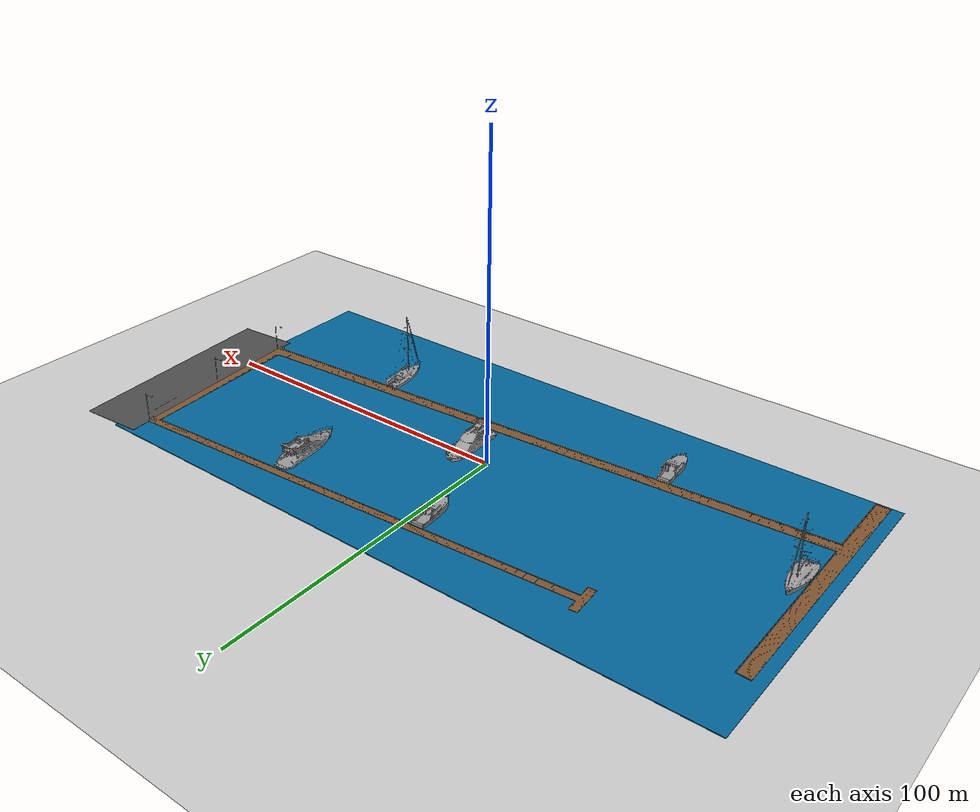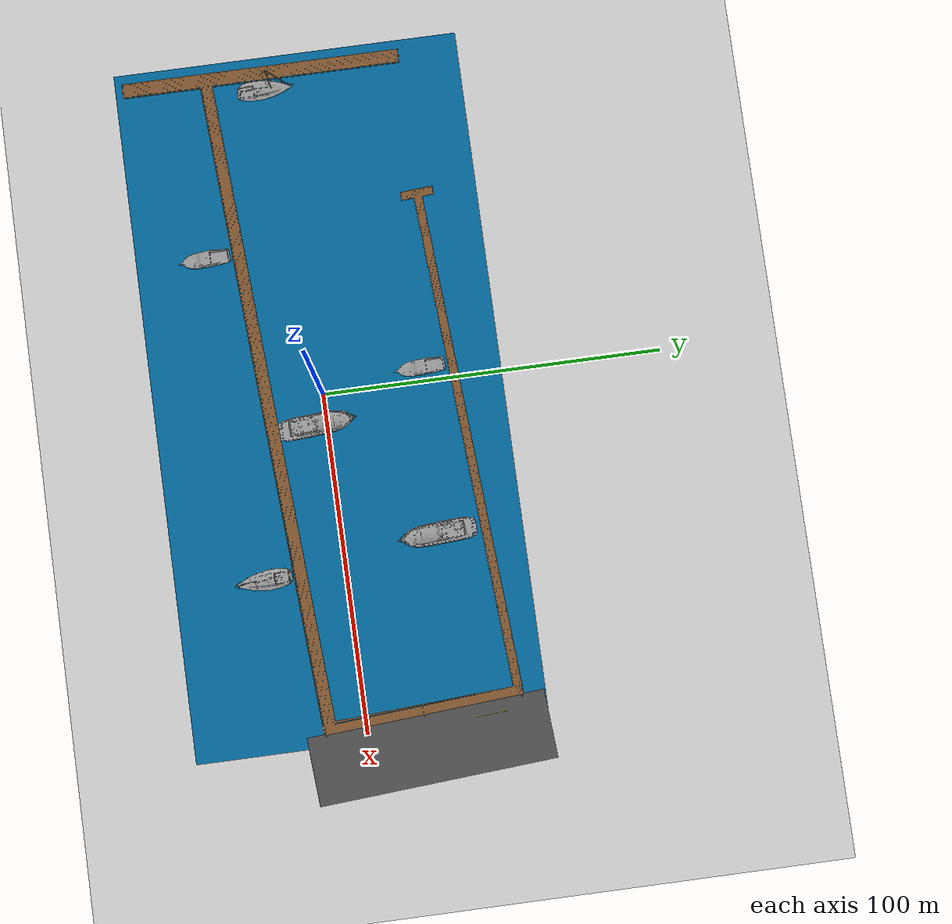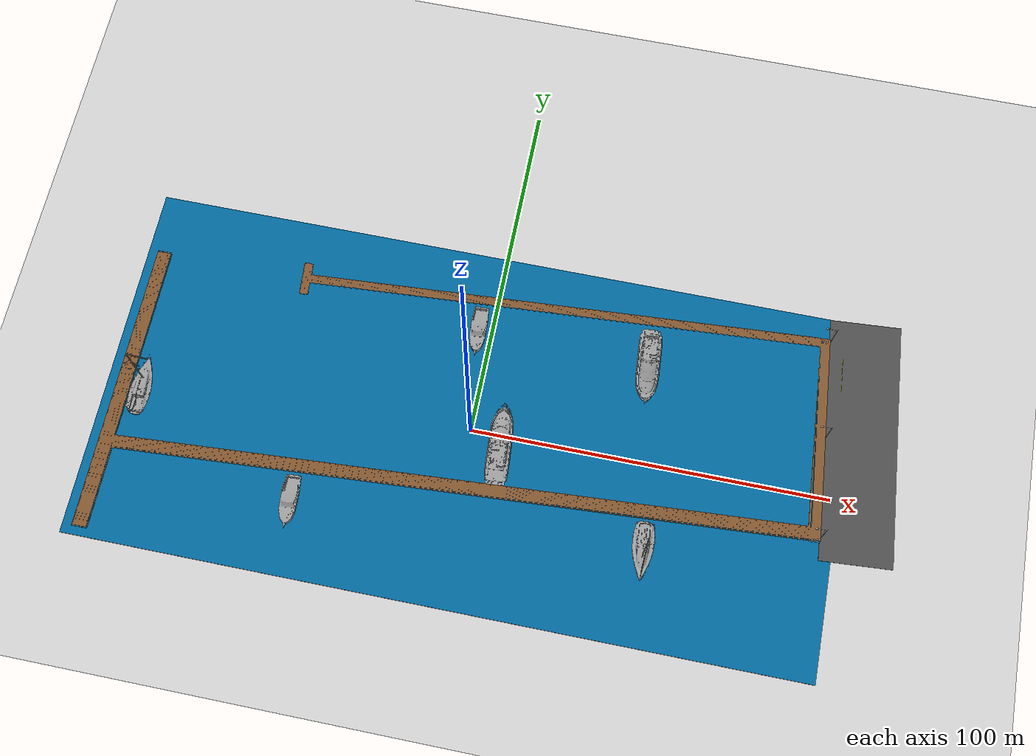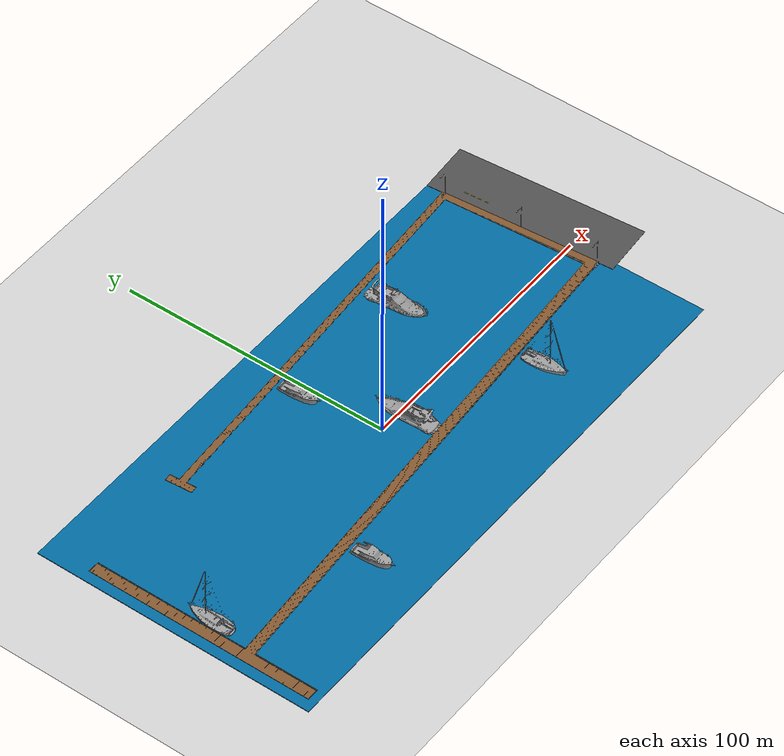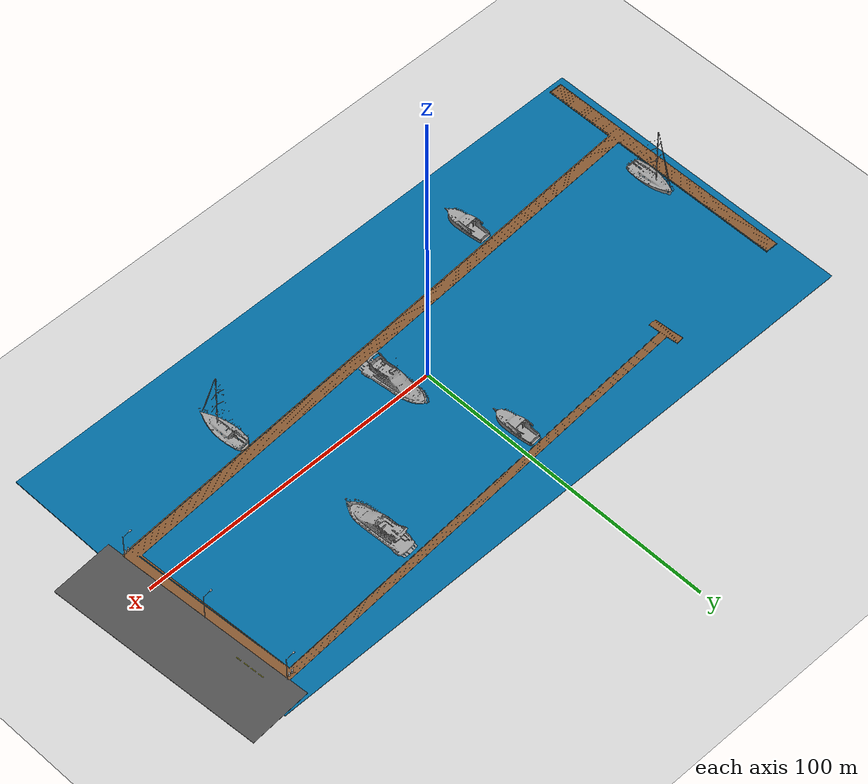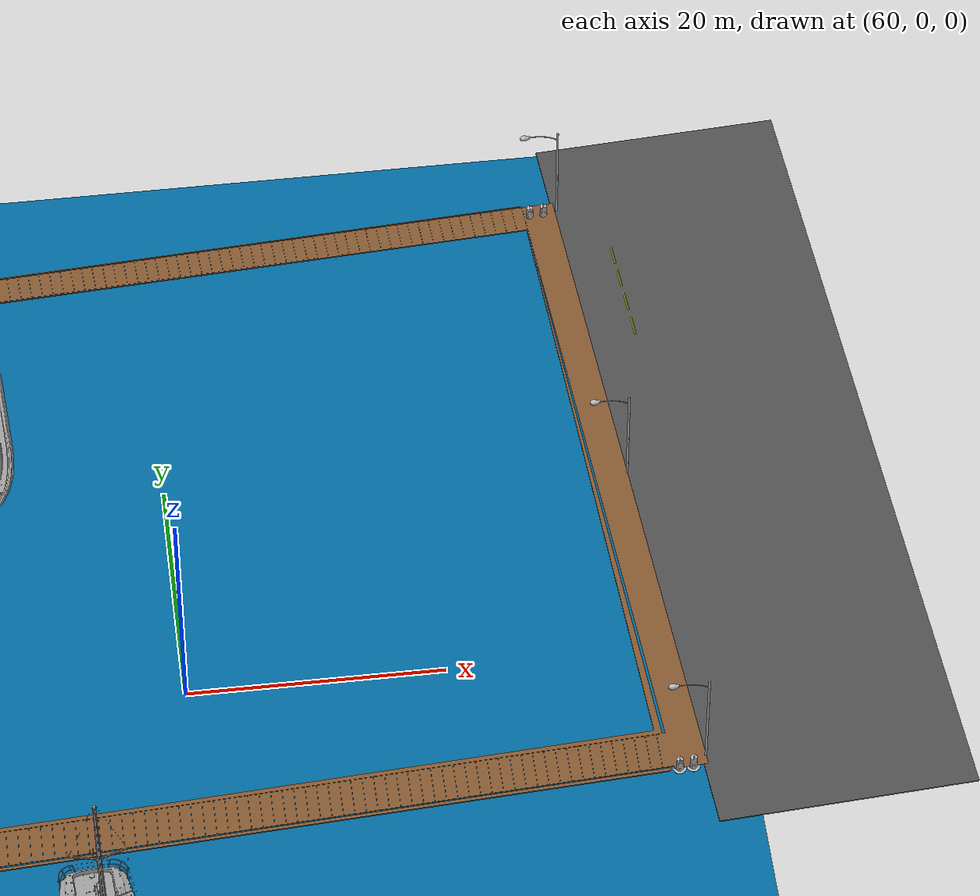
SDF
<sdf version="1.7">
 <world name="default">
  <model name="ground_plane">
   <static>1</static>
   <link name="link">
    <collision name="collision">
     <geometry><plane><normal>0 0 1</normal><size>100 100</size></plane></geometry>
     <surface><friction><ode><mu>100</mu><mu2>50</mu2></ode></friction></surface>
    </collision>
    <visual name="visual">
     <cast_shadows>0</cast_shadows>
     <geometry><plane><normal>0 0 1</normal><size>100 100</size></plane></geometry>
     <material>
      <script><uri>file://media/materials/scripts/gazebo.material</uri><name>Gazebo/Grey</name></script>
     </material>
    </visual>
   </link>
  </model>
  <gravity>0 0 -9.8</gravity>
  <magnetic_field>6e-06 2.3e-05 -4.2e-05</magnetic_field>
  <atmosphere type="adiabatic"/>
  <physics type="ode">
   <max_step_size>0.001</max_step_size>
   <real_time_factor>1</real_time_factor>
   <real_time_update_rate>1000</real_time_update_rate>
  </physics>
  <scene><ambient>0.4 0.4 0.4 1</ambient><background>0.7 0.7 0.7 1</background><shadows>0</shadows></scene>
  <audio><device>default</device></audio>
  <spherical_coordinates>
   <surface_model>EARTH_WGS84</surface_model>
   <latitude_deg>0</latitude_deg>
   <longitude_deg>0</longitude_deg>
   <elevation>0</elevation>
   <heading_deg>0</heading_deg>
  </spherical_coordinates>
  <light name="sun" type="directional">
   <pose>-37.2448 -35.311 10 0 -0 0</pose>
   <diffuse>0.8 0.8 0.8 1</diffuse>
   <specular>0.2 0.2 0.2 1</specular>
   <attenuation>
    <range>1000</range>
    <constant>0.9</constant>
    <linear>0.01</linear>
    <quadratic>0.001</quadratic>
   </attenuation>
   <direction>-0.5 0.1 -0.9</direction>
   <spot><inner_angle>0</inner_angle><outer_angle>0</outer_angle><falloff>0</falloff></spot>
  </light>
  <light name="sun_clone" type="directional">
   <pose>31.987 4.34201 10 0 -0 0</pose>
   <diffuse>0.8 0.8 0.8 1</diffuse>
   <specular>0.2 0.2 0.2 1</specular>
   <direction>-0.483368 0.096674 -0.870063</direction>
   <attenuation>
    <range>1000</range>
    <constant>0.9</constant>
    <linear>0.01</linear>
    <quadratic>0.001</quadratic>
   </attenuation>
   <spot><inner_angle>0</inner_angle><outer_angle>0</outer_angle><falloff>0</falloff></spot>
  </light>
  <model name="drc_practice_yellow_parking_block">
   <static>1</static>
   <link name="link">
    <visual name="visual">
     <geometry><mesh><uri>model://drc_practice_yellow_parking_block/meshes/block.dae</uri></mesh></geometry>
    </visual>
    <collision name="collision">
     <geometry><mesh><uri>model://drc_practice_yellow_parking_block/meshes/block.dae</uri></mesh></geometry>
    </collision>
   </link>
   <pose>98.5986 37.6254 1.1 0 -0 0.075</pose>
  </model>
  <model name="drc_practice_yellow_parking_block_clone">
   <static>1</static>
   <link name="link">
    <visual name="visual">
     <geometry><mesh><uri>model://drc_practice_yellow_parking_block/meshes/block.dae</uri></mesh></geometry>
    </visual>
    <collision name="collision">
     <geometry><mesh><uri>model://drc_practice_yellow_parking_block/meshes/block.dae</uri></mesh></geometry>
    </collision>
   </link>
   <pose>98.9902 32.3619 1.1 0 -0 0.075</pose>
  </model>
  <model name="drc_practice_yellow_parking_block_clone_0">
   <static>1</static>
   <link name="link">
    <visual name="visual">
     <geometry><mesh><uri>model://drc_practice_yellow_parking_block/meshes/block.dae</uri></mesh></geometry>
    </visual>
    <collision name="collision">
     <geometry><mesh><uri>model://drc_practice_yellow_parking_block/meshes/block.dae</uri></mesh></geometry>
    </collision>
   </link>
   <pose>98.7927 35.0179 1.1 0 -0 0.075</pose>
  </model>
  <model name="drc_practice_yellow_parking_block_clone_1">
   <static>1</static>
   <link name="link">
    <visual name="visual">
     <geometry><mesh><uri>model://drc_practice_yellow_parking_block/meshes/block.dae</uri></mesh></geometry>
    </visual>
    <collision name="collision">
     <geometry><mesh><uri>model://drc_practice_yellow_parking_block/meshes/block.dae</uri></mesh></geometry>
    </collision>
   </link>
   <pose>98.4313 40.105 1.1 0 -0 0.075</pose>
  </model>
  <model name="Lamp Post_clone_2">
   <static>1</static>
   <link name="link">
    <collision name="collision">
     <geometry><mesh><uri>model://lamp_post/meshes/lamp_post.dae</uri><scale>3 3 3</scale></mesh></geometry>
    </collision>
    <visual name="visual">
     <geometry><mesh><uri>model://lamp_post/meshes/lamp_post.dae</uri><scale>3 3 3</scale></mesh></geometry>
    </visual>
   </link>
   <pose>98.4245 -11.3766 1.1 0 0 -1.52725</pose>
  </model>
  <model name="yacht_1_0_clone">
   <static>1</static>
   <link name="link">
    <visual name="visual">
     <geometry>
      <mesh>
       <uri>/home/albert/marinero_ws/src/marinero_simulations/models/yacht_2/meshes/Yatch.stl</uri>
       <scale>5 5 5</scale>
      </mesh>
     </geometry>
     <material>
      <script><uri>file://media/materials/scripts/gazebo.material</uri><name>Gazebo/Grey</name></script>
     </material>
    </visual>
    <collision name="collision">
     <geometry>
      <mesh>
       <uri>/home/albert/marinero_ws/src/marinero_simulations/models/yacht_2/meshes/Yatch.stl</uri>
       <scale>5 5 5</scale>
      </mesh>
     </geometry>
    </collision>
   </link>
   <pose>-3.91105 28.6257 0 0 0 -3.07578</pose>
  </model>
  <model name="yacht_1_clone">
   <static>1</static>
   <link name="link">
    <visual name="visual">
     <geometry>
      <mesh>
       <uri>/home/albert/marinero_ws/src/marinero_simulations/models/yacht_1/meshes/Yacht_v2.dae</uri>
       <scale>2.5 2.5 2.5</scale>
      </mesh>
     </geometry>
     <material>
      <script><uri>file://media/materials/scripts/gazebo.material</uri><name>Gazebo/Grey</name></script>
     </material>
    </visual>
    <collision name="collision">
     <geometry>
      <mesh>
       <uri>/home/albert/marinero_ws/src/marinero_simulations/models/yacht_1/meshes/Yacht_v2.dae</uri>
       <scale>2.5 2.5 2.5</scale>
      </mesh>
     </geometry>
    </collision>
   </link>
   <pose>44.9116 29.2238 0.645733 0 -0 0.06455</pose>
  </model>
  <model name="yacht_1_clone_0_clone">
   <static>1</static>
   <link name="link">
    <visual name="visual">
     <geometry>
      <mesh>
       <uri>/home/albert/marinero_ws/src/marinero_simulations/models/yacht_1/meshes/Yacht_v2.dae</uri>
       <scale>2.5 2.5 2.5</scale>
      </mesh>
     </geometry>
     <material>
      <script><uri>file://media/materials/scripts/gazebo.material</uri><name>Gazebo/Grey</name></script>
     </material>
    </visual>
    <collision name="collision">
     <geometry>
      <mesh>
       <uri>/home/albert/marinero_ws/src/marinero_simulations/models/yacht_1/meshes/Yacht_v2.dae</uri>
       <scale>2.5 2.5 2.5</scale>
      </mesh>
     </geometry>
    </collision>
   </link>
   <pose>8.91017 -4.39494 0.645733 0 0 -3.07126</pose>
  </model>
  <model name="yacht_1_0_clone_clone_0">
   <static>1</static>
   <link name="link">
    <visual name="visual">
     <geometry>
      <mesh>
       <uri>/home/albert/marinero_ws/src/marinero_simulations/models/yacht_2/meshes/Yatch.stl</uri>
       <scale>5 5 5</scale>
      </mesh>
     </geometry>
     <material>
      <script><uri>file://media/materials/scripts/gazebo.material</uri><name>Gazebo/Grey</name></script>
     </material>
    </visual>
    <collision name="collision">
     <geometry>
      <mesh>
       <uri>/home/albert/marinero_ws/src/marinero_simulations/models/yacht_2/meshes/Yatch.stl</uri>
       <scale>5 5 5</scale>
      </mesh>
     </geometry>
    </collision>
   </link>
   <pose>-44.0831 -30.2099 0 0 0 -3.07578</pose>
  </model>
  <model name="Lamp Post_clone_2_clone">
   <static>1</static>
   <link name="link">
    <collision name="collision">
     <geometry><mesh><uri>model://lamp_post/meshes/lamp_post.dae</uri><scale>3 3 3</scale></mesh></geometry>
    </collision>
    <visual name="visual">
     <geometry><mesh><uri>model://lamp_post/meshes/lamp_post.dae</uri><scale>3 3 3</scale></mesh></geometry>
    </visual>
   </link>
   <pose>94.4762 45.6231 1.1 0 0 -1.52725</pose>
  </model>
  <model name="Lamp Post_clone_2_clone_0">
   <static>1</static>
   <link name="link">
    <collision name="collision">
     <geometry><mesh><uri>model://lamp_post/meshes/lamp_post.dae</uri><scale>3 3 3</scale></mesh></geometry>
    </collision>
    <visual name="visual">
     <geometry><mesh><uri>model://lamp_post/meshes/lamp_post.dae</uri><scale>3 3 3</scale></mesh></geometry>
    </visual>
   </link>
   <pose>96.3464 16.9493 1.1 0 0 -1.52725</pose>
  </model>
  <model name="sailboat_1_clone_0_clone_1">
   <static>1</static>
   <link name="link">
    <visual name="visual">
     <pose>0 0 10.5 1.57 -0 0</pose>
     <geometry>
      <mesh>
       <uri>/home/albert/marinero_ws/src/marinero_simulations/models/sailboat_1/meshes/Sailboat.stl</uri>
       <scale>1800 1800 1800</scale>
      </mesh>
     </geometry>
     <material>
      <script><uri>file://media/materials/scripts/gazebo.material</uri><name>Gazebo/Grey</name></script>
     </material>
    </visual>
    <collision name="collision">
     <pose>0 0 10.5 1.57 -0 0</pose>
     <geometry>
      <mesh>
       <uri>/home/albert/marinero_ws/src/marinero_simulations/models/sailboat_1/meshes/Sailboat.stl</uri>
       <scale>1800 1800 1800</scale>
      </mesh>
     </geometry>
    </collision>
   </link>
   <pose>52.0752 -23.8149 -0.195807 0 -0 1.63495</pose>
  </model>
  <model name="sailboat_1_clone_1">
   <static>1</static>
   <link name="link">
    <visual name="visual">
     <pose>0 0 10.5 1.57 -0 0</pose>
     <geometry>
      <mesh>
       <uri>/home/albert/marinero_ws/src/marinero_simulations/models/sailboat_1/meshes/Sailboat.stl</uri>
       <scale>1800 1800 1800</scale>
      </mesh>
     </geometry>
     <material>
      <script><uri>file://media/materials/scripts/gazebo.material</uri><name>Gazebo/Grey</name></script>
     </material>
    </visual>
    <collision name="collision">
     <pose>0 0 10.5 1.57 -0 0</pose>
     <geometry>
      <mesh>
       <uri>/home/albert/marinero_ws/src/marinero_simulations/models/sailboat_1/meshes/Sailboat.stl</uri>
       <scale>1800 1800 1800</scale>
      </mesh>
     </geometry>
    </collision>
   </link>
   <pose>-92.7434 -6.14694 -0.195807 0 0 -1.5691</pose>
  </model>
  <model name="Construction Barrel_clone_2_clone_clone_clone">
   <link name="link">
    <inertial>
     <pose>0 0 0.4 0 -0 0</pose>
     <mass>500</mass>
     <inertia><ixx>51.2096</ixx><iyy>51.2096</iyy><izz>25</izz><ixy>0</ixy><ixz>0</ixz><iyz>0</iyz></inertia>
    </inertial>
    <collision name="collision">
     <geometry><mesh><uri>model://construction_barrel/meshes/construction_barrel.dae</uri></mesh></geometry>
    </collision>
    <visual name="visual">
     <geometry><mesh><uri>model://construction_barrel/meshes/construction_barrel.dae</uri></mesh></geometry>
    </visual>
   </link>
   <pose>92.2012 45.1005 1.09886 0 -4e-06 -1.53307</pose>
  </model>
  <model name="Construction Barrel_clone_2_clone_clone_clone_0">
   <link name="link">
    <inertial>
     <pose>0 0 0.4 0 -0 0</pose>
     <mass>500</mass>
     <inertia><ixx>51.2096</ixx><iyy>51.2096</iyy><izz>25</izz><ixy>0</ixy><ixz>0</ixz><iyz>0</iyz></inertia>
    </inertial>
    <collision name="collision">
     <geometry><mesh><uri>model://construction_barrel/meshes/construction_barrel.dae</uri></mesh></geometry>
    </collision>
    <visual name="visual">
     <geometry><mesh><uri>model://construction_barrel/meshes/construction_barrel.dae</uri></mesh></geometry>
    </visual>
   </link>
   <pose>96.3175 -12.3289 1.09886 1.3e-05 -1.2e-05 -1.59567</pose>
  </model>
  <model name="Construction Barrel_clone_2_clone_clone_clone_0_clone">
   <link name="link">
    <inertial>
     <pose>0 0 0.4 0 -0 0</pose>
     <mass>500</mass>
     <inertia><ixx>51.2096</ixx><iyy>51.2096</iyy><izz>25</izz><ixy>0</ixy><ixz>0</ixz><iyz>0</iyz></inertia>
    </inertial>
    <collision name="collision">
     <geometry><mesh><uri>model://construction_barrel/meshes/construction_barrel.dae</uri></mesh></geometry>
    </collision>
    <visual name="visual">
     <geometry><mesh><uri>model://construction_barrel/meshes/construction_barrel.dae</uri></mesh></geometry>
    </visual>
   </link>
   <pose>97.3833 -12.2565 1.09886 0 -0 -1.51849</pose>
  </model>
  <model name="Construction Barrel_clone_2_clone_clone_clone_clone">
   <link name="link">
    <inertial>
     <pose>0 0 0.4 0 -0 0</pose>
     <mass>500</mass>
     <inertia><ixx>51.2096</ixx><iyy>51.2096</iyy><izz>25</izz><ixy>0</ixy><ixz>0</ixz><iyz>0</iyz></inertia>
    </inertial>
    <collision name="collision">
     <geometry><mesh><uri>model://construction_barrel/meshes/construction_barrel.dae</uri></mesh></geometry>
    </collision>
    <visual name="visual">
     <geometry><mesh><uri>model://construction_barrel/meshes/construction_barrel.dae</uri></mesh></geometry>
    </visual>
   </link>
   <pose>93.3505 45.1668 1.09886 0 -4e-06 -1.53321</pose>
  </model>
  <model name="asphalt_plane">
   <link name="link">
    <inertial>
     <mass>1</mass>
     <inertia><ixx>1</ixx><ixy>0</ixy><ixz>0</ixz><iyy>1</iyy><iyz>0</iyz><izz>1</izz></inertia>
    </inertial>
    <visual name="visual">
     <cast_shadows>0</cast_shadows>
     <geometry><box><size>70 20 0.1</size></box></geometry>
     <material>
      <script>
       <uri>model://asphalt_plane/materials/scripts</uri>
       <uri>model://asphalt_plane/materials/textures</uri>
       <name>vrc/asphalt</name>
      </script>
      <shader type="pixel"><normal_map>__default__</normal_map></shader>
      <ambient>0.5 0.5 0.5 1</ambient>
      <diffuse>0.5 0.5 0.5 1</diffuse>
      <specular>0.2 0.2 0.2 1</specular>
      <emissive>0 0 0 1</emissive>
     </material>
    </visual>
    <collision name="collision">
     <geometry><box><size>70 20 0.1</size></box></geometry>
     <surface>
      <friction>
       <ode><mu>1</mu><mu2>1</mu2><fdir1>0 0 0</fdir1><slip1>0.001</slip1><slip2>1e-05</slip2></ode>
       <torsional>
        <coefficient>1</coefficient>
        <patch_radius>0</patch_radius>
        <surface_radius>0</surface_radius>
        <use_patch_radius>1</use_patch_radius>
        <ode><slip>0</slip></ode>
       </torsional>
      </friction>
      <bounce><restitution_coefficient>0</restitution_coefficient><threshold>1e+06</threshold></bounce>
      <contact>
       <collide_without_contact>0</collide_without_contact>
       <collide_without_contact_bitmask>1</collide_without_contact_bitmask>
       <collide_bitmask>1</collide_bitmask>
       <ode>
        <soft_cfm>0</soft_cfm>
        <soft_erp>0.2</soft_erp>
        <kp>1e+13</kp>
        <kd>1</kd>
        <max_vel>0.01</max_vel>
        <min_depth>0</min_depth>
       </ode>
       <bullet>
        <split_impulse>1</split_impulse>
        <split_impulse_penetration_threshold>-0.01</split_impulse_penetration_threshold>
        <soft_cfm>0</soft_cfm>
        <soft_erp>0.2</soft_erp>
        <kp>1e+13</kp>
        <kd>1</kd>
       </bullet>
      </contact>
     </surface>
    </collision>
   </link>
   <static>1</static>
   <pose>106.084 18.0841 1.05 0 0 -1.5</pose>
  </model>
  <model name="Marina_dokovi">
   <link name="link">
    <inertial>
     <mass>100000</mass>
     <inertia><ixx>0</ixx><ixy>0</ixy><ixz>0</ixz><iyy>0</iyy><iyz>0</iyz><izz>0</izz></inertia>
    </inertial>
    <visual name="visual">
     <geometry>
      <mesh>
       <uri>/home/albert/marinero_ws/src/marinero_simulations/models/Marina_dokovi/meshes/Marina_bez_razmaka_1m.dae</uri>
       <scale>1 1 1</scale>
      </mesh>
     </geometry>
     <material>
      <script><uri>file://media/materials/scripts/gazebo.material</uri><name>Gazebo/Brown</name></script>
      <ambient>0.278 0.129 0.02 1</ambient>
      <diffuse>0.278 0.129 0.02 1</diffuse>
      <specular>0.278 0.129 0.02 1</specular>
      <emissive>0 0 0 1</emissive>
      <shader type="pixel"><normal_map>__default__</normal_map></shader>
     </material>
    </visual>
    <collision name="collision">
     <geometry>
      <mesh>
       <uri>/home/albert/marinero_ws/src/marinero_simulations/models/Marina_dokovi/meshes/Marina_bez_razmaka_1m.dae</uri>
       <scale>1 1 1</scale>
      </mesh>
     </geometry>
     <surface>
      <friction>
       <ode><mu>0.9</mu><mu2>0.9</mu2><fdir1>0 0 0</fdir1><slip1>0.001</slip1><slip2>1e-05</slip2></ode>
       <torsional>
        <coefficient>1</coefficient>
        <patch_radius>0</patch_radius>
        <surface_radius>0</surface_radius>
        <use_patch_radius>1</use_patch_radius>
        <ode><slip>0</slip></ode>
       </torsional>
      </friction>
      <bounce><restitution_coefficient>0</restitution_coefficient><threshold>1000</threshold></bounce>
      <contact>
       <collide_without_contact>0</collide_without_contact>
       <collide_without_contact_bitmask>0</collide_without_contact_bitmask>
       <collide_bitmask>1</collide_bitmask>
       <ode>
        <soft_cfm>0</soft_cfm>
        <soft_erp>0.2</soft_erp>
        <kp>1e+11</kp>
        <kd>100</kd>
        <max_vel>10</max_vel>
        <min_depth>0.001</min_depth>
       </ode>
       <bullet>
        <split_impulse>1</split_impulse>
        <split_impulse_penetration_threshold>-0.01</split_impulse_penetration_threshold>
        <soft_cfm>0</soft_cfm>
        <soft_erp>0.2</soft_erp>
        <kp>1e+11</kp>
        <kd>100</kd>
       </bullet>
      </contact>
     </surface>
    </collision>
   </link>
   <static>1</static>
   <pose>-100 -48 1.25 0 -0 0</pose>
  </model>
  <model name="sea_plane">
   <link name="link">
    <inertial>
     <mass>5.27875e+06</mass>
     <inertia>
      <ixx>4.66688e+09</ixx>
      <ixy>0</ixy>
      <ixz>0</ixz>
      <iyy>1.84866e+10</iyy>
      <iyz>0</iyz>
      <izz>2.31535e+10</izz>
     </inertia>
    </inertial>
    <visual name="visual">
     <cast_shadows>0</cast_shadows>
     <geometry><box><size>205 103 0.25</size></box></geometry>
     <material>
      <script>
       <uri>model://sea_plane/materials/scripts</uri>
       <uri>model://sea_plane/materials/textures</uri>
       <name>vrc/sea</name>
      </script>
      <shader type="pixel"><normal_map>__default__</normal_map></shader>
      <ambient>0 0.4 0.6 0</ambient>
      <diffuse>0 0.4 0.6 1</diffuse>
      <specular>0.2 0.2 0.2 1</specular>
      <emissive>0 0 0 1</emissive>
     </material>
    </visual>
    <collision name="collision">
     <geometry><box><size>205 103 0.25</size></box></geometry>
     <surface>
      <friction>
       <ode><mu>1</mu><mu2>1</mu2><fdir1>0 0 0</fdir1><slip1>0</slip1><slip2>0</slip2></ode>
       <torsional>
        <coefficient>1</coefficient>
        <patch_radius>0</patch_radius>
        <surface_radius>0</surface_radius>
        <use_patch_radius>1</use_patch_radius>
        <ode><slip>0</slip></ode>
       </torsional>
      </friction>
      <bounce><restitution_coefficient>0</restitution_coefficient><threshold>1e+06</threshold></bounce>
      <contact>
       <collide_without_contact>0</collide_without_contact>
       <collide_without_contact_bitmask>1</collide_without_contact_bitmask>
       <collide_bitmask>1</collide_bitmask>
       <ode>
        <soft_cfm>0</soft_cfm>
        <soft_erp>0.2</soft_erp>
        <kp>1e+13</kp>
        <kd>1</kd>
        <max_vel>0.01</max_vel>
        <min_depth>0</min_depth>
       </ode>
       <bullet>
        <split_impulse>1</split_impulse>
        <split_impulse_penetration_threshold>-0.01</split_impulse_penetration_threshold>
        <soft_cfm>0</soft_cfm>
        <soft_erp>0.2</soft_erp>
        <kp>1e+13</kp>
        <kd>1</kd>
       </bullet>
      </contact>
     </surface>
    </collision>
   </link>
   <static>1</static>
   <pose>-0.469625 1.29503 0 0 -0 0</pose>
  </model>
 </world>
</sdf>
